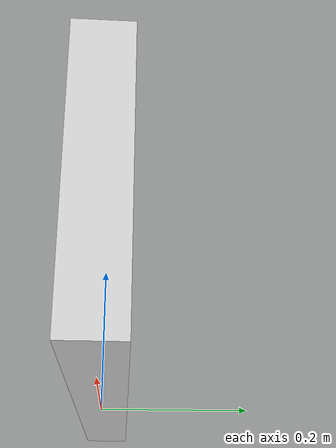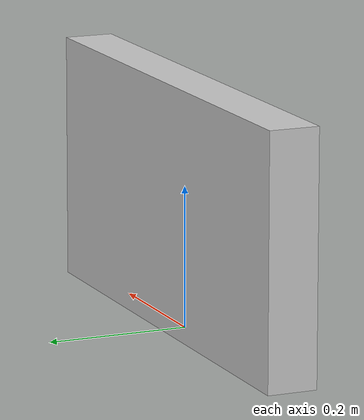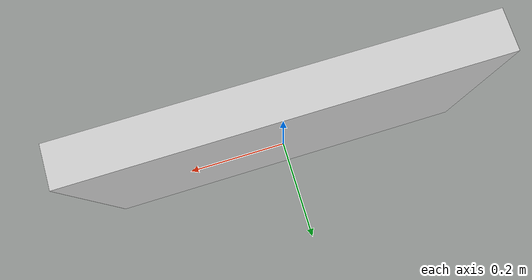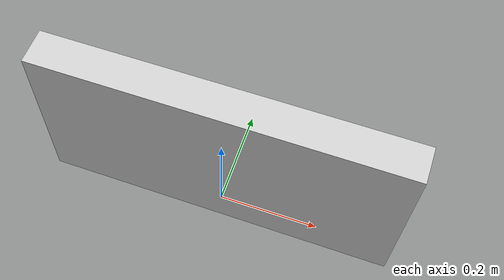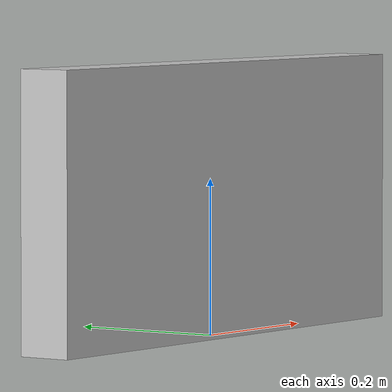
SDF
<?xml version="1.0" ?>
<sdf version="1.5">
  <model name="ro2">
    <static>true</static>
    <link name="link">
      <visual name="visual">
        <geometry>
          <mesh>
            <uri>model://aic_ro2/meshes/ro2.dae</uri>
            <scale>0.7 0.7 0.7</scale>
          </mesh>
        </geometry>
      </visual>

      <collision name="collision">
        <geometry>
          <mesh>
            <uri>model://aic_cp/meshes/cp.dae</uri>
            <scale>0.7 0.7 0.7</scale>
          </mesh>
        </geometry>
      </collision>
    </link>
  </model>
</sdf>
